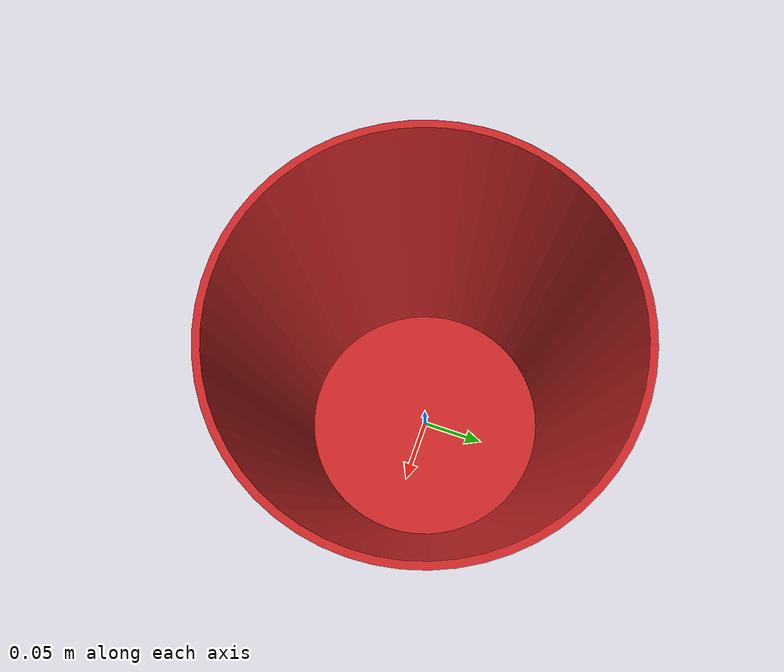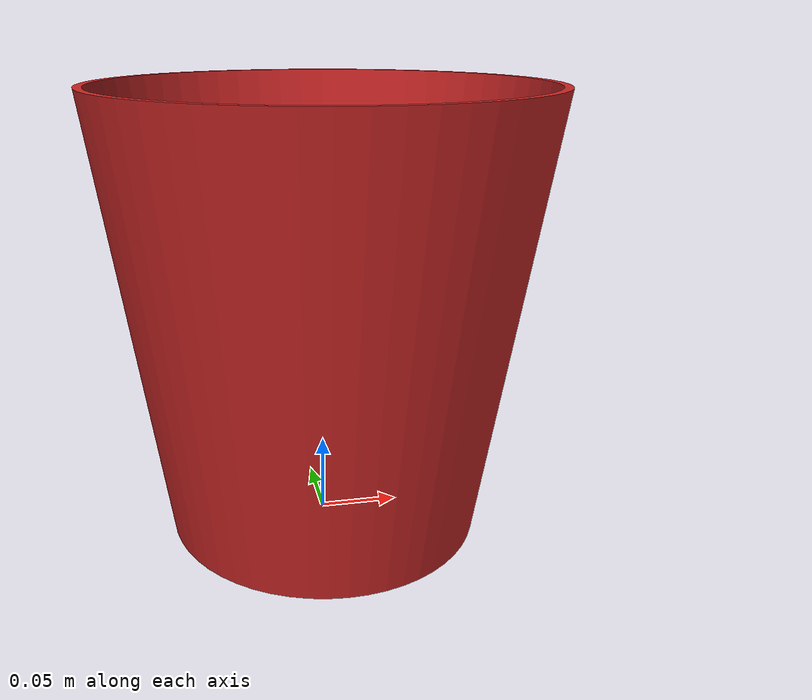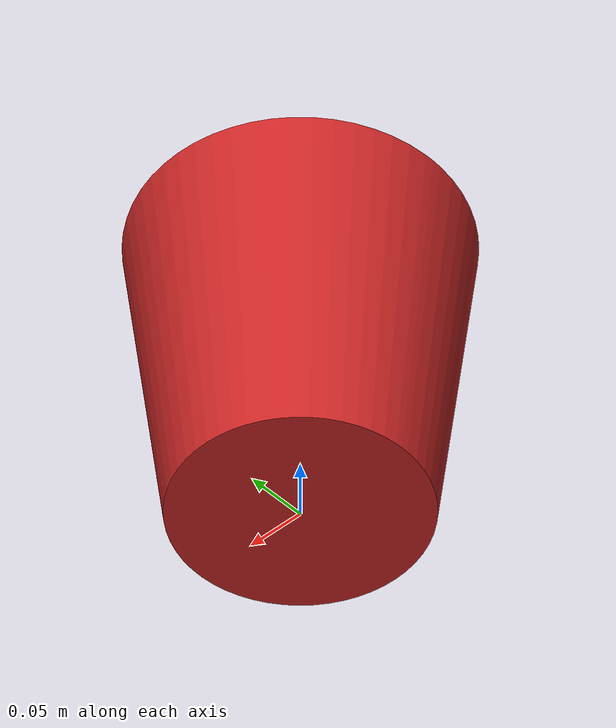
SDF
<?xml version="1.0" ?>
<sdf version="1.5">
  <model name="bin">
    <link name="link">
      <inertial>
        <mass>5</mass>
        <inertia>
          <ixx>0.004403477783</ixx>
          <ixy>0</ixy>
          <ixz>0</ixz>
          <iyy>0.002049332389</iyy>
          <iyz>0</iyz>
          <izz>0.00225500462</izz>
        </inertia> -->
      </inertial>
      <collision name="collision">
        <geometry>
          <mesh>
            <uri>model://bin/meshes/bin.dae</uri>
          </mesh>
        </geometry>
      </collision>
      <visual name="visual">
        <geometry>
          <mesh>
            <uri>model://bin/meshes/bin.dae</uri>
          </mesh>
        </geometry>
        <material>
          <script>
            <uri>file://media/materials/scripts/gazebo.material</uri>
            <name>Gazebo/Red</name>
          </script>
        </material>
      </visual>
    </link>
        <plugin name="p3d_base_controller" filename="libgazebo_ros_p3d.so">
          <robotNamespace>/bin</robotNamespace>
            <alwaysOn>true</alwaysOn>
            <updateRate>50.0</updateRate>
            <bodyName>link</bodyName>
            <topicName>odom</topicName>
            <gaussianNoise>0.01</gaussianNoise>
            <frameName>world</frameName>
            <xyzOffsets>0 0 0</xyzOffsets>
            <rpyOffsets>0 0 0</rpyOffsets>
        </plugin>

    <!-- reference to your plugin -->
  </model>
</sdf>
